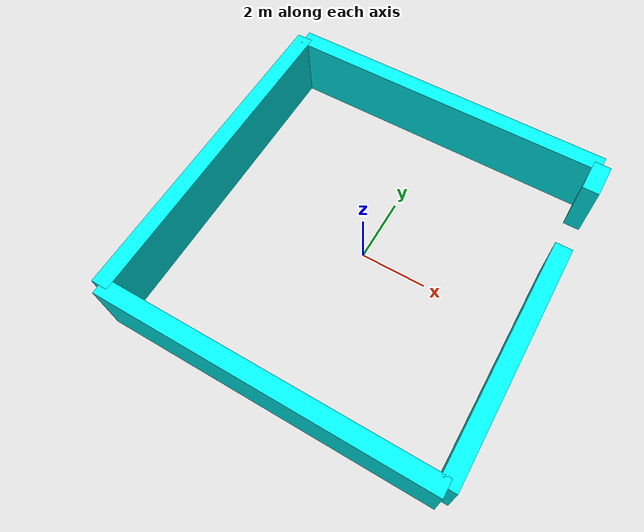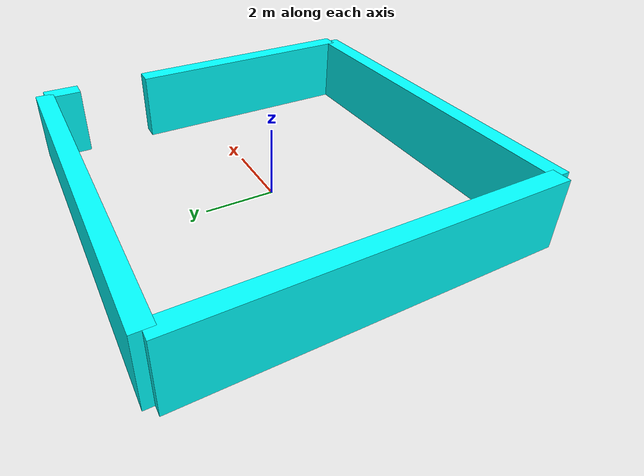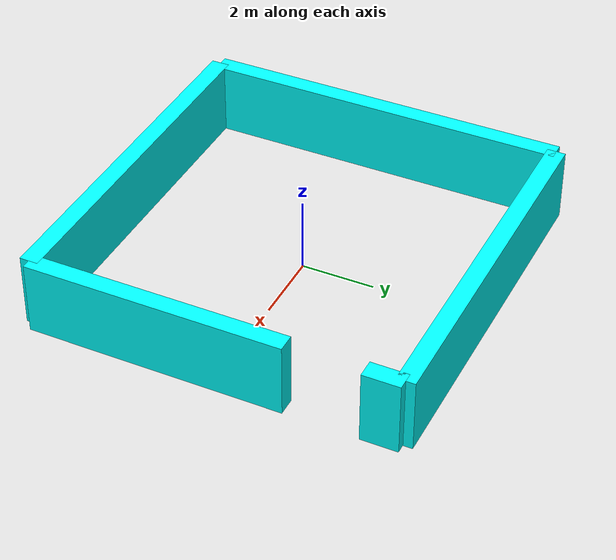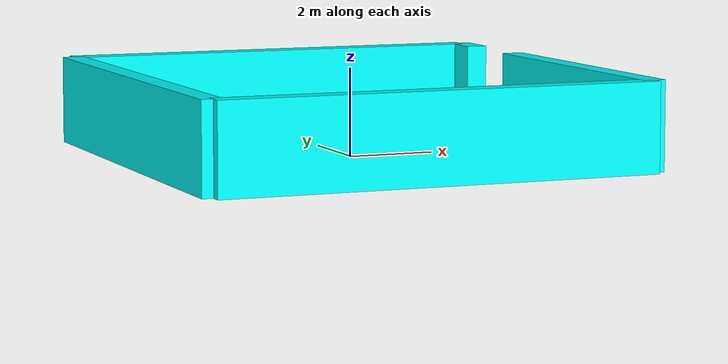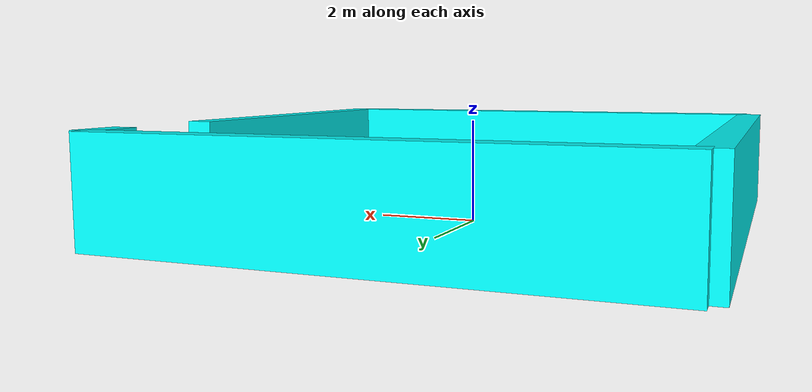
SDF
<?xml version='1.0'?>
<sdf version="1.9">
    <model name='room'>
        <static>true</static>

            <link name='wNorth1'>
                <pose relative_to='__model__'>5.0 -1.5 1.0 0 0 0</pose>
                <visual name='visual'>
                    <geometry>
                        <box>
                            <size>0.5 7 2</size>
                        </box>
                    </geometry>
                    <material>
                        <ambient>0.0 1.0 1.0 1</ambient>
                        <diffuse>0.0 1.0 1.0 1</diffuse>
                        <specular>0.0 1.0 1.0 1</specular>
                    </material>
                </visual>
                <collision name='collision'>
                    <geometry>
                        <box>
                            <size>0.5 7 2</size>
                        </box>
                    </geometry>
                </collision>
            </link>

            <link name='wNorth2'>
                <pose relative_to='__model__'>5.0 4.5 1.0 0 0 0</pose>
                <visual name='visual'>
                    <geometry>
                        <box>
                            <size>0.5 1 2</size>
                        </box>
                    </geometry>
                    <material>
                        <ambient>0.0 1.0 1.0 1</ambient>
                        <diffuse>0.0 1.0 1.0 1</diffuse>
                        <specular>0.0 1.0 1.0 1</specular>
                    </material>
                </visual>
                <collision name='collision'>
                    <geometry>
                        <box>
                            <size>0.5 1 2</size>
                        </box>
                    </geometry>
                </collision>
            </link>

            <link name='wWest'>
                <pose relative_to='__model__'>0 5.0 1.0 0 0 1.570796327</pose>
                <visual name='visual'>
                    <geometry>
                        <box>
                            <size>0.5 10 2</size>
                        </box>
                    </geometry>
                    <material>
                        <ambient>0.0 1.0 1.0 1</ambient>
                        <diffuse>0.0 1.0 1.0 1</diffuse>
                        <specular>0.0 1.0 1.0 1</specular>
                    </material>
                </visual>
                <collision name='collision'>
                    <geometry>
                        <box>
                            <size>0.5 10 2</size>
                        </box>
                    </geometry>
                </collision>
            </link>

            <link name='wSouth'>
                <pose relative_to='__model__'>-5.0 0 1.0 0 0 0</pose>
                <visual name='visual'>
                    <geometry>
                        <box>
                            <size>0.5 10 2</size>
                        </box>
                    </geometry>
                    <material>
                        <ambient>0.0 1.0 1.0 1</ambient>
                        <diffuse>0.0 1.0 1.0 1</diffuse>
                        <specular>0.0 1.0 1.0 1</specular>
                    </material>
                </visual>
                <collision name='collision'>
                    <geometry>
                        <box>
                            <size>0.5 10 2</size>
                        </box>
                    </geometry>
                </collision>
            </link>

            <link name='wEast'>
                <pose relative_to='__model__'>0 -5.0 1.0 0 0 1.570796327</pose>
                <visual name='visual'>
                    <geometry>
                        <box>
                            <size>0.5 10 2</size>
                        </box>
                    </geometry>
                    <material>
                        <ambient>0.0 1.0 1.0 1</ambient>
                        <diffuse>0.0 1.0 1.0 1</diffuse>
                        <specular>0.0 1.0 1.0 1</specular>
                    </material>
                </visual>
                <collision name='collision'>
                    <geometry>
                        <box>
                            <size>0.5 10 2</size>
                        </box>
                    </geometry>
                </collision>
            </link>

    </model>
</sdf>
